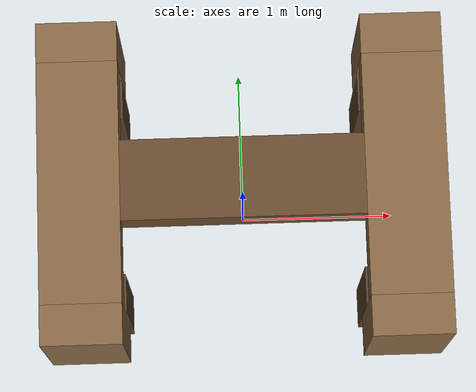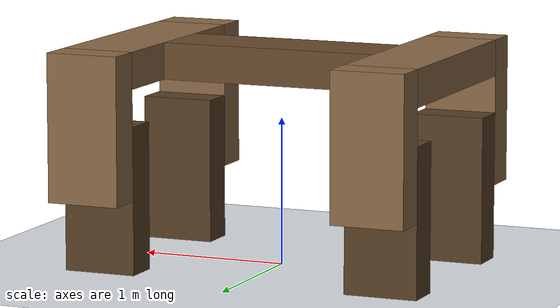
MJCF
<mujoco model="demo_j_fetch">
  <compiler angle="radian" coordinate="local" autolimits="true"/>
  <option timestep="0.005" gravity="0 0 -9.8" integrator="implicitfast"
          solver="Newton" iterations="5" ls_iterations="5"/>

  <default>
    <joint type="hinge" limited="true" range="-1.0471975512 1.0471975512"
           damping="35" armature="0.01"/>
    <geom type="box" friction="0.77459666924 0.005 0.0001"
          condim="3" rgba="0.55 0.42 0.28 1"/>
    <motor ctrllimited="true" ctrlrange="-1 1"/>
  </default>

  <visual>
    <global offwidth="640" offheight="480"/>
    <headlight ambient="0.35 0.35 0.35" diffuse="0.8 0.8 0.8"/>
  </visual>

  <worldbody>
    <light name="sun" pos="0 -3 8" dir="0 0 -1" directional="true"/>
    <geom name="Ground" type="plane" size="30 30 0.1"
          rgba="0.88 0.90 0.92 1" contype="1" conaffinity="1"/>

    <body name="Torso" pos="0 0 1.375">
      <freejoint name="root"/>
      <inertial pos="0 0 0" mass="1" diaginertia="1 1 1"/>
      <geom name="Torso_geom" size="0.75 0.25 0.125"
            contype="0" conaffinity="0" rgba="0.42 0.30 0.18 1"/>
      <camera name="track" mode="trackcom" pos="-5 -7 3" xyaxes="0.81 -0.58 0 0.18 0.25 0.95"/>

      <body name="Shoulders" pos="1 0 0">
        <inertial pos="0 0 0" mass="1" diaginertia="1 1 1"/>
        <joint name="Torso_Shoulders" pos="0 0 0" axis="1 0 0"/>
        <geom name="Shoulders_geom" size="0.25 0.75 0.125"
              contype="0" conaffinity="0"/>

        <body name="Front Right Upper" pos="0 -0.875 -0.375">
          <inertial pos="0 0 0" mass="1" diaginertia="1 1 1"/>
          <joint name="Shoulders_Front Right Upper" pos="0 0 0.375" axis="0 1 0"/>
          <geom name="Front Right Upper_geom" size="0.25 0.125 0.5"
                contype="0" conaffinity="0"/>
          <body name="Front Right Lower" pos="0 0.25 -0.5">
            <inertial pos="0 0 0" mass="1" diaginertia="1 1 1"/>
            <joint name="Front Right Upper_Front Right Lower"
                   pos="0 0 0.25" axis="0 1 0"/>
            <geom name="Front Right Lower_geom" size="0.25 0.125 0.5"
                  contype="1" conaffinity="1" rgba="0.35 0.25 0.15 1"/>
            <site name="front_right_foot" pos="0 0 -0.5" size="0.04"
                  rgba="0.8 0.1 0.1 1"/>
          </body>
        </body>

        <body name="Front Left Upper" pos="0 0.875 -0.375">
          <inertial pos="0 0 0" mass="1" diaginertia="1 1 1"/>
          <joint name="Shoulders_Front Left Upper" pos="0 0 0.375" axis="0 1 0"/>
          <geom name="Front Left Upper_geom" size="0.25 0.125 0.5"
                contype="0" conaffinity="0"/>
          <body name="Front Left Lower" pos="0 -0.25 -0.5">
            <inertial pos="0 0 0" mass="1" diaginertia="1 1 1"/>
            <joint name="Front Left Upper_Front Left Lower"
                   pos="0 0 0.25" axis="0 1 0"/>
            <geom name="Front Left Lower_geom" size="0.25 0.125 0.5"
                  contype="1" conaffinity="1" rgba="0.35 0.25 0.15 1"/>
            <site name="front_left_foot" pos="0 0 -0.5" size="0.04"
                  rgba="0.1 0.3 0.8 1"/>
          </body>
        </body>
      </body>

      <body name="Hips" pos="-1 0 0">
        <inertial pos="0 0 0" mass="1" diaginertia="1 1 1"/>
        <joint name="Torso_Hips" pos="0 0 0" axis="1 0 0"/>
        <geom name="Hips_geom" size="0.25 0.75 0.125"
              contype="0" conaffinity="0"/>

        <body name="Back Right Upper" pos="0 -0.875 -0.375">
          <inertial pos="0 0 0" mass="1" diaginertia="1 1 1"/>
          <joint name="Hips_Back Right Upper" pos="0 0 0.375" axis="0 1 0"/>
          <geom name="Back Right Upper_geom" size="0.25 0.125 0.5"
                contype="0" conaffinity="0"/>
          <body name="Back Right Lower" pos="0 0.25 -0.5">
            <inertial pos="0 0 0" mass="1" diaginertia="1 1 1"/>
            <joint name="Back Right Upper_Back Right Lower"
                   pos="0 0 0.25" axis="0 1 0"/>
            <geom name="Back Right Lower_geom" size="0.25 0.125 0.5"
                  contype="1" conaffinity="1" rgba="0.35 0.25 0.15 1"/>
            <site name="back_right_foot" pos="0 0 -0.5" size="0.04"
                  rgba="0.8 0.1 0.1 1"/>
          </body>
        </body>

        <body name="Back Left Upper" pos="0 0.875 -0.375">
          <inertial pos="0 0 0" mass="1" diaginertia="1 1 1"/>
          <joint name="Hips_Back Left Upper" pos="0 0 0.375" axis="0 1 0"/>
          <geom name="Back Left Upper_geom" size="0.25 0.125 0.5"
                contype="0" conaffinity="0"/>
          <body name="Back Left Lower" pos="0 -0.25 -0.5">
            <inertial pos="0 0 0" mass="1" diaginertia="1 1 1"/>
            <joint name="Back Left Upper_Back Left Lower"
                   pos="0 0 0.25" axis="0 1 0"/>
            <geom name="Back Left Lower_geom" size="0.25 0.125 0.5"
                  contype="1" conaffinity="1" rgba="0.35 0.25 0.15 1"/>
            <site name="back_left_foot" pos="0 0 -0.5" size="0.04"
                  rgba="0.1 0.3 0.8 1"/>
          </body>
        </body>
      </body>
    </body>
  </worldbody>

  <!-- Positive controls increase the legacy Fetch angle_vel coordinates. -->
  <actuator>
    <motor name="Torso_Shoulders" joint="Torso_Shoulders" gear="300"/>
    <motor name="Torso_Hips" joint="Torso_Hips" gear="300"/>
    <motor name="Shoulders_Front Right Upper" joint="Shoulders_Front Right Upper" gear="300"/>
    <motor name="Front Right Upper_Front Right Lower" joint="Front Right Upper_Front Right Lower" gear="300"/>
    <motor name="Shoulders_Front Left Upper" joint="Shoulders_Front Left Upper" gear="300"/>
    <motor name="Front Left Upper_Front Left Lower" joint="Front Left Upper_Front Left Lower" gear="300"/>
    <motor name="Hips_Back Right Upper" joint="Hips_Back Right Upper" gear="300"/>
    <motor name="Back Right Upper_Back Right Lower" joint="Back Right Upper_Back Right Lower" gear="300"/>
    <motor name="Hips_Back Left Upper" joint="Hips_Back Left Upper" gear="300"/>
    <motor name="Back Left Upper_Back Left Lower" joint="Back Left Upper_Back Left Lower" gear="300"/>
  </actuator>
</mujoco>
